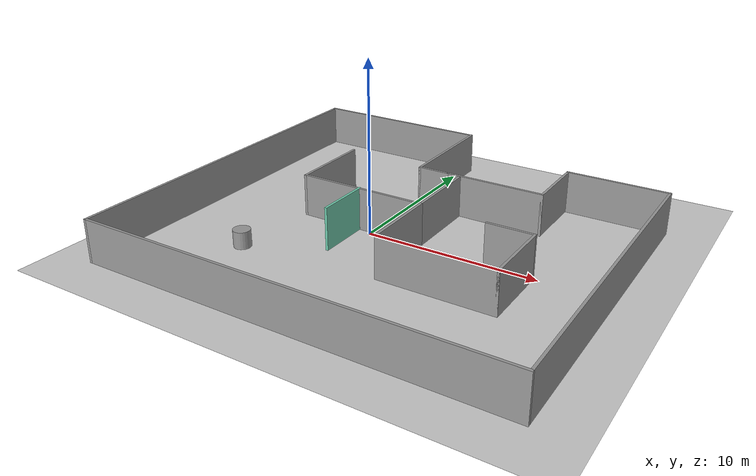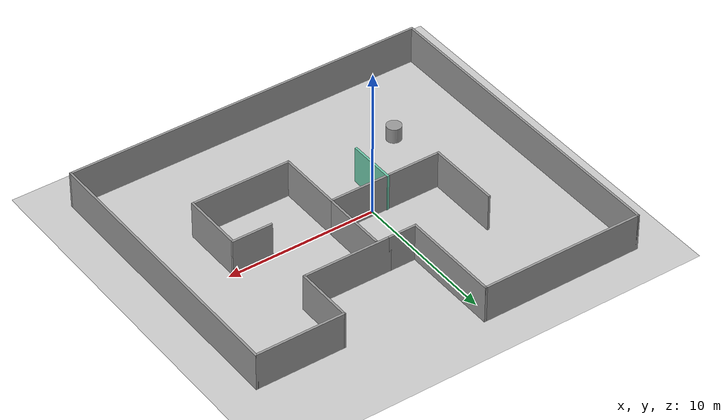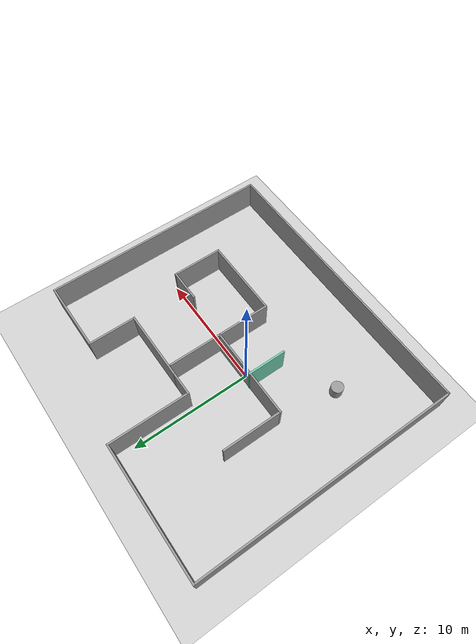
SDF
<sdf version="1.6">
 <world name="default">
  <light name="sun" type="directional">
   <pose>0 0 10 0 -0 0</pose>
   <diffuse>0.8 0.8 0.8 1</diffuse>
   <specular>0.2 0.2 0.2 1</specular>
   <attenuation>
    <range>1000</range>
    <constant>0.9</constant>
    <linear>0.01</linear>
    <quadratic>0.001</quadratic>
   </attenuation>
   <direction>-0.5 0.1 -0.9</direction>
  </light>
  <model name="ground_plane">
   <static>1</static>
   <link name="link">
    <collision name="collision">
     <geometry><plane><normal>0 0 1</normal><size>100 100</size></plane></geometry>
     <surface>
      <contact><collide_bitmask>65535</collide_bitmask></contact>
      <friction><ode><mu>100</mu><mu2>50</mu2></ode></friction>
     </surface>
    </collision>
    <visual name="visual">
     <cast_shadows>0</cast_shadows>
     <geometry><plane><normal>0 0 1</normal><size>100 100</size></plane></geometry>
     <material>
      <script><uri>file://media/materials/scripts/gazebo.material</uri><name>Gazebo/Grey</name></script>
     </material>
    </visual>
   </link>
  </model>
  <gravity>0 0 -9.8</gravity>
  <magnetic_field>6e-06 2.3e-05 -4.2e-05</magnetic_field>
  <atmosphere type="adiabatic"/>
  <physics name="default_physics" default="0" type="ode">
   <max_step_size>0.001</max_step_size>
   <real_time_factor>1</real_time_factor>
   <real_time_update_rate>1000</real_time_update_rate>
  </physics>
  <scene><ambient>0.4 0.4 0.4 1</ambient><background>0.7 0.7 0.7 1</background><shadows>1</shadows></scene>
  <audio><device>default</device></audio>
  <spherical_coordinates>
   <surface_model>EARTH_WGS84</surface_model>
   <latitude_deg>0</latitude_deg>
   <longitude_deg>0</longitude_deg>
   <elevation>0</elevation>
   <heading_deg>0</heading_deg>
  </spherical_coordinates>
  <model name="Untitled">
   <link name="link_0">
    <inertial>
     <mass>1</mass>
     <inertia><ixx>0.145833</ixx><ixy>0</ixy><ixz>0</ixz><iyy>0.145833</iyy><iyz>0</iyz><izz>0.125</izz></inertia>
    </inertial>
    <pose>-3.40368 -2.66151 0.25 0 -0 0</pose>
    <visual name="visual">
     <geometry><cylinder><radius>0.5</radius><length>1</length></cylinder></geometry>
     <material>
      <lighting>1</lighting>
      <script><uri>file://media/materials/scripts/gazebo.material</uri><name>Gazebo/Grey</name></script>
      <shader type="pixel"/>
     </material>
    </visual>
    <collision name="collision">
     <geometry><cylinder><radius>0.5</radius><length>1</length></cylinder></geometry>
     <surface>
      <friction>
       <ode><mu>1</mu><mu2>1</mu2><fdir1>0 0 0</fdir1><slip1>0</slip1><slip2>0</slip2></ode>
       <torsional>
        <coefficient>1</coefficient>
        <patch_radius>0</patch_radius>
        <surface_radius>0</surface_radius>
        <use_patch_radius>1</use_patch_radius>
        <ode><slip>0</slip></ode>
       </torsional>
      </friction>
      <bounce><restitution_coefficient>0</restitution_coefficient><threshold>1e+06</threshold></bounce>
      <contact>
       <collide_without_contact>0</collide_without_contact>
       <collide_without_contact_bitmask>1</collide_without_contact_bitmask>
       <collide_bitmask>1</collide_bitmask>
       <ode>
        <soft_cfm>0</soft_cfm>
        <soft_erp>0.2</soft_erp>
        <kp>1e+13</kp>
        <kd>1</kd>
        <max_vel>0.01</max_vel>
        <min_depth>0</min_depth>
       </ode>
       <bullet>
        <split_impulse>1</split_impulse>
        <split_impulse_penetration_threshold>-0.01</split_impulse_penetration_threshold>
        <soft_cfm>0</soft_cfm>
        <soft_erp>0.2</soft_erp>
        <kp>1e+13</kp>
        <kd>1</kd>
       </bullet>
      </contact>
     </surface>
    </collision>
   </link>
   <model name="world2">
    <pose>3.40368 2.66151 -0.25 0 -0 0</pose>
    <link name="Wall_1">
     <collision name="Wall_1_Collision">
      <geometry><box><size>6 0.15 2.5</size></box></geometry>
      <pose>0 0 1.25 0 -0 0</pose>
     </collision>
     <visual name="Wall_1_Visual">
      <pose>0 0 1.25 0 -0 0</pose>
      <geometry><box><size>6 0.15 2.5</size></box></geometry>
      <material>
       <script><uri>file://media/materials/scripts/gazebo.material</uri><name>Gazebo/Grey</name></script>
       <ambient>1 1 1 1</ambient>
      </material>
      <meta><layer>0</layer></meta>
     </visual>
     <pose>3.4 4.325 0 0 -0 0</pose>
    </link>
    <link name="Wall_11">
     <collision name="Wall_11_Collision">
      <geometry><box><size>4.5 0.15 2.5</size></box></geometry>
      <pose>0 0 1.25 0 -0 0</pose>
     </collision>
     <visual name="Wall_11_Visual">
      <pose>0 0 1.25 0 -0 0</pose>
      <geometry><box><size>4.5 0.15 2.5</size></box></geometry>
      <material>
       <script><uri>file://media/materials/scripts/gazebo.material</uri><name>Gazebo/Grey</name></script>
       <ambient>1 1 1 1</ambient>
      </material>
      <meta><layer>0</layer></meta>
     </visual>
     <pose>1.31225 1.95837 0 0 -0 -1.5708</pose>
    </link>
    <link name="Wall_12">
     <collision name="Wall_12_Collision">
      <geometry><box><size>7.75 0.15 2.5</size></box></geometry>
      <pose>0 0 1.25 0 -0 0</pose>
     </collision>
     <visual name="Wall_12_Visual">
      <pose>0 0 1.25 0 -0 0</pose>
      <geometry><box><size>7.75 0.15 2.5</size></box></geometry>
      <material>
       <script><uri>file://media/materials/scripts/gazebo.material</uri><name>Gazebo/Grey</name></script>
       <ambient>1 1 1 1</ambient>
      </material>
      <meta><layer>0</layer></meta>
     </visual>
     <pose>-2.48775 -0.216628 0 0 -0 3.14159</pose>
    </link>
    <link name="Wall_13">
     <collision name="Wall_13_Collision">
      <geometry><box><size>5 0.15 2.5</size></box></geometry>
      <pose>0 0 1.25 0 -0 0</pose>
     </collision>
     <visual name="Wall_13_Visual">
      <pose>0 0 1.25 0 -0 0</pose>
      <geometry><box><size>5 0.15 2.5</size></box></geometry>
      <material>
       <script><uri>file://media/materials/scripts/gazebo.material</uri><name>Gazebo/Grey</name></script>
       <ambient>1 1 1 1</ambient>
      </material>
      <meta><layer>0</layer></meta>
     </visual>
     <pose>-6.28775 2.20837 0 0 -0 1.5708</pose>
    </link>
    <link name="Wall_15">
     <collision name="Wall_15_Collision">
      <geometry><box><size>4.5 0.15 2.5</size></box></geometry>
      <pose>0 0 1.25 0 -0 0</pose>
     </collision>
     <visual name="Wall_15_Visual">
      <pose>0 0 1.25 0 -0 0</pose>
      <geometry><box><size>4.5 0.15 2.5</size></box></geometry>
      <material>
       <script><uri>file://media/materials/scripts/gazebo.material</uri><name>Gazebo/Grey</name></script>
       <ambient>1 1 1 1</ambient>
      </material>
      <meta><layer>0</layer></meta>
     </visual>
     <pose>1.31225 -2.39163 0 0 -0 -1.5708</pose>
    </link>
    <link name="Wall_16">
     <collision name="Wall_16_Collision">
      <geometry><box><size>6.75 0.15 2.5</size></box></geometry>
      <pose>0 0 1.25 0 -0 0</pose>
     </collision>
     <visual name="Wall_16_Visual">
      <pose>0 0 1.25 0 -0 0</pose>
      <geometry><box><size>6.75 0.15 2.5</size></box></geometry>
      <material>
       <script><uri>file://media/materials/scripts/gazebo.material</uri><name>Gazebo/Grey</name></script>
       <ambient>1 1 1 1</ambient>
      </material>
      <meta><layer>0</layer></meta>
     </visual>
     <pose>4.61225 -4.56663 0 0 -0 0</pose>
    </link>
    <link name="Wall_17">
     <collision name="Wall_17_Collision">
      <geometry><box><size>4.25 0.15 2.5</size></box></geometry>
      <pose>0 0 1.25 0 -0 0</pose>
     </collision>
     <visual name="Wall_17_Visual">
      <pose>0 0 1.25 0 -0 0</pose>
      <geometry><box><size>4.25 0.15 2.5</size></box></geometry>
      <material>
       <script><uri>file://media/materials/scripts/gazebo.material</uri><name>Gazebo/Grey</name></script>
       <ambient>1 1 1 1</ambient>
      </material>
      <meta><layer>0</layer></meta>
     </visual>
     <pose>7.91225 -2.51663 0 0 -0 1.5708</pose>
    </link>
    <link name="Wall_18">
     <collision name="Wall_18_Collision">
      <geometry><box><size>2.75 0.15 2.5</size></box></geometry>
      <pose>0 0 1.25 0 -0 0</pose>
     </collision>
     <visual name="Wall_18_Visual">
      <pose>0 0 1.25 0 -0 0</pose>
      <geometry><box><size>2.75 0.15 2.5</size></box></geometry>
      <material>
       <script><uri>file://media/materials/scripts/gazebo.material</uri><name>Gazebo/Grey</name></script>
       <ambient>1 1 1 1</ambient>
      </material>
      <meta><layer>0</layer></meta>
     </visual>
     <pose>6.61225 -0.466628 0 0 -0 3.14159</pose>
    </link>
    <link name="Wall_2">
     <collision name="Wall_2_Collision">
      <geometry><box><size>4 0.15 2.5</size></box></geometry>
      <pose>0 0 1.25 0 -0 0</pose>
     </collision>
     <visual name="Wall_2_Visual">
      <pose>0 0 1.25 0 -0 0</pose>
      <geometry><box><size>4 0.15 2.5</size></box></geometry>
      <material>
       <script><uri>file://media/materials/scripts/gazebo.material</uri><name>Gazebo/Grey</name></script>
       <ambient>1 1 1 1</ambient>
      </material>
      <meta><layer>0</layer></meta>
     </visual>
     <pose>6.325 6.25 0 0 -0 1.5708</pose>
    </link>
    <link name="Wall_3">
     <collision name="Wall_3_Collision">
      <geometry><box><size>6 0.15 2.5</size></box></geometry>
      <pose>0 0 1.25 0 -0 0</pose>
     </collision>
     <visual name="Wall_3_Visual">
      <pose>0 0 1.25 0 -0 0</pose>
      <geometry><box><size>6 0.15 2.5</size></box></geometry>
      <material>
       <script><uri>file://media/materials/scripts/gazebo.material</uri><name>Gazebo/Grey</name></script>
       <ambient>1 1 1 1</ambient>
      </material>
      <meta><layer>0</layer></meta>
     </visual>
     <pose>9.25 8.175 0 0 -0 0</pose>
    </link>
    <link name="Wall_4">
     <collision name="Wall_4_Collision">
      <geometry><box><size>19.25 0.15 2.5</size></box></geometry>
      <pose>0 0 1.25 0 -0 0</pose>
     </collision>
     <visual name="Wall_4_Visual">
      <pose>0 0 1.25 0 -0 0</pose>
      <geometry><box><size>19.25 0.15 2.5</size></box></geometry>
      <material>
       <script><uri>file://media/materials/scripts/gazebo.material</uri><name>Gazebo/Grey</name></script>
       <ambient>1 1 1 1</ambient>
      </material>
      <meta><layer>0</layer></meta>
     </visual>
     <pose>12.175 -1.375 0 0 -0 -1.5708</pose>
    </link>
    <link name="Wall_5">
     <collision name="Wall_5_Collision">
      <geometry><box><size>24.5 0.15 2.5</size></box></geometry>
      <pose>0 0 1.25 0 -0 0</pose>
     </collision>
     <visual name="Wall_5_Visual">
      <pose>0 0 1.25 0 -0 0</pose>
      <geometry><box><size>24.5 0.15 2.5</size></box></geometry>
      <material>
       <script><uri>file://media/materials/scripts/gazebo.material</uri><name>Gazebo/Grey</name></script>
       <ambient>1 1 1 1</ambient>
      </material>
      <meta><layer>0</layer></meta>
     </visual>
     <pose>1e-06 -10.925 0 0 -0 3.14159</pose>
    </link>
    <link name="Wall_6">
     <collision name="Wall_6_Collision">
      <geometry><box><size>22 0.15 2.5</size></box></geometry>
      <pose>0 0 1.25 0 -0 0</pose>
     </collision>
     <visual name="Wall_6_Visual">
      <pose>0 0 1.25 0 -0 0</pose>
      <geometry><box><size>22 0.15 2.5</size></box></geometry>
      <material>
       <script><uri>file://media/materials/scripts/gazebo.material</uri><name>Gazebo/Grey</name></script>
       <ambient>1 1 1 1</ambient>
      </material>
      <meta><layer>0</layer></meta>
     </visual>
     <pose>-12.175 0 0 0 -0 1.5708</pose>
    </link>
    <link name="Wall_7">
     <collision name="Wall_7_Collision">
      <geometry><box><size>11 0.15 2.5</size></box></geometry>
      <pose>0 0 1.25 0 -0 0</pose>
     </collision>
     <visual name="Wall_7_Visual">
      <pose>0 0 1.25 0 -0 0</pose>
      <geometry><box><size>11 0.15 2.5</size></box></geometry>
      <material>
       <script><uri>file://media/materials/scripts/gazebo.material</uri><name>Gazebo/Grey</name></script>
       <ambient>1 1 1 1</ambient>
      </material>
      <meta><layer>0</layer></meta>
     </visual>
     <pose>-6.75 10.925 0 0 -0 0</pose>
    </link>
    <link name="Wall_8">
     <collision name="Wall_8_Collision">
      <geometry><box><size>6.75 0.15 2.5</size></box></geometry>
      <pose>0 0 1.25 0 -0 0</pose>
     </collision>
     <visual name="Wall_8_Visual">
      <pose>0 0 1.25 0 -0 0</pose>
      <geometry><box><size>6.75 0.15 2.5</size></box></geometry>
      <material>
       <script><uri>file://media/materials/scripts/gazebo.material</uri><name>Gazebo/Grey</name></script>
       <ambient>1 1 1 1</ambient>
      </material>
      <meta><layer>0</layer></meta>
     </visual>
     <pose>-1.325 7.625 0 0 -0 -1.5708</pose>
    </link>
    <link name="Wall_9">
     <collision name="Wall_9_Collision">
      <geometry><box><size>1.95 0.15 2.5</size></box></geometry>
      <pose>0 0 1.25 0 -0 0</pose>
     </collision>
     <visual name="Wall_9_Visual">
      <pose>0 0 1.25 0 -0 0</pose>
      <geometry><box><size>1.95 0.15 2.5</size></box></geometry>
      <material>
       <script><uri>file://media/materials/scripts/gazebo.material</uri><name>Gazebo/Grey</name></script>
       <ambient>1 1 1 1</ambient>
      </material>
      <meta><layer>0</layer></meta>
     </visual>
     <pose>-0.424999 4.325 0 0 -0 0</pose>
    </link>
    <static>1</static>
   </model>
   <static>0</static>
   <pose>-1.64618 -2.19426 0.249997 -2e-06 -2e-06 0</pose>
  </model>
  <model name="world2_0">
   <pose>-0.4725 -1.26 0 0 -0 0</pose>
   <link name="Wall_1">
    <collision name="Wall_1_Collision">
     <geometry><box><size>3.25 0.15 2.5</size></box></geometry>
     <pose>0 0 1.25 0 -0 0</pose>
    </collision>
    <visual name="Wall_1_Visual">
     <pose>0 0 1.25 0 -0 0</pose>
     <geometry><box><size>3.25 0.15 2.5</size></box></geometry>
     <material>
      <script><uri>file://media/materials/scripts/gazebo.material</uri><name>Gazebo/Grey</name></script>
      <ambient>0.435294 0.796078 0.67451 1</ambient>
     </material>
     <meta><layer>0</layer></meta>
    </visual>
    <pose>-0.3975 0 0 0 -0 1.5708</pose>
   </link>
   <static>1</static>
  </model>
 </world>
</sdf>
